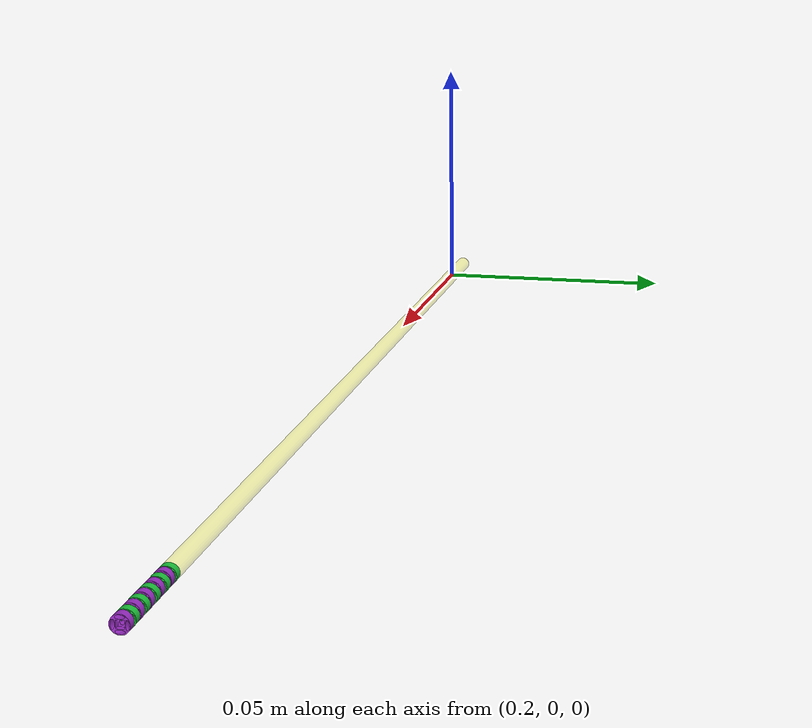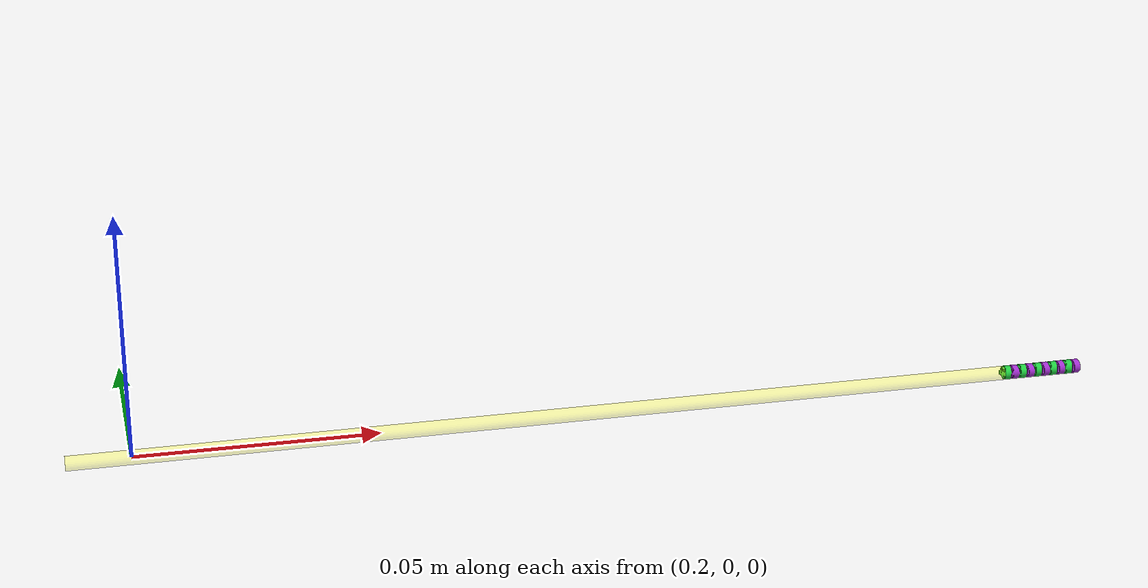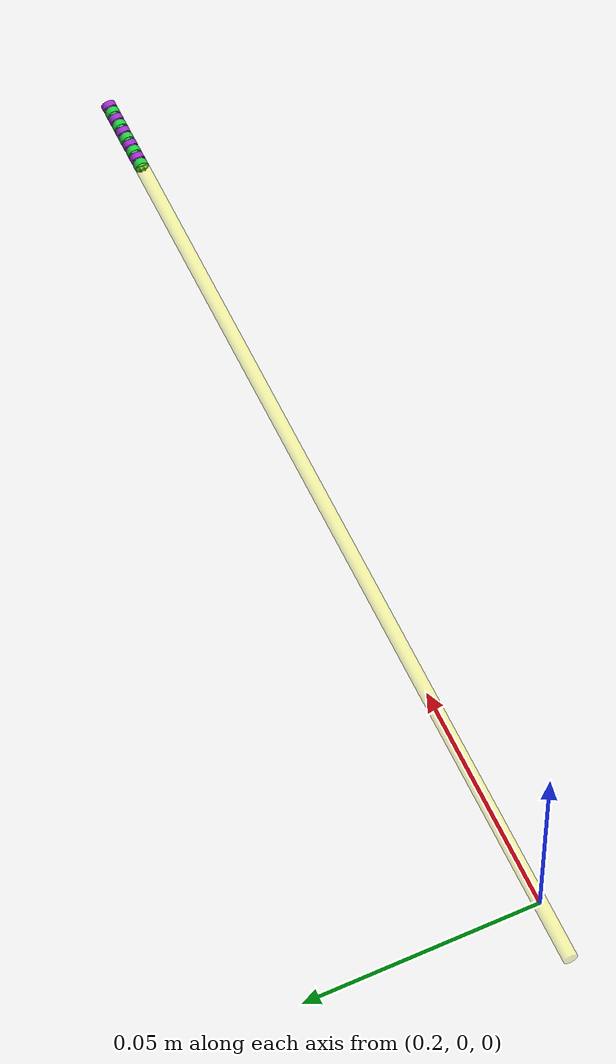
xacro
<?xml version="1.0"?>
<robot xmlns:xacro="https://www.ros.org/wiki/xacro" name="surgical_robot_control">

<xacro:property name="width" value="0.05"/>
<xacro:property name="height" value="0.2"/>
<xacro:property name="mass" value="0.1"/>

<!-- segment macro -->
<xacro:property name="seg_interval" value="0.0018"/>
<xacro:property name="tilt" value="0.0 1.0 0.0"/>
<xacro:property name="pan" value="0.0 0.0 1.0"/>

<xacro:property name="gray" value="1.0 1.0 1.0 0.4"/>
<xacro:property name="black" value="0.0 0.0 0.0 1.0"/>
<xacro:property name="orange" value="1.0 0.4 0.0 1.0"/>
<xacro:property name="blue" value="0 0 0.8 1"/>
<xacro:property name="blueviolet" value="0.54 0.16 0.88 1.0"/>

    <link name="base_surgical_robot">
        <inertial>
            <origin xyz="0.0 0.0 0.0" rpy="0.0 0.0 0.0"/>
        </inertial>
    </link>

    <joint name="base-shaft" type="fixed">
        <origin xyz="0.187 0.0 0.0" rpy="0.0 0.0 0.0"/>
        <parent link="base_surgical_robot"/>
        <child link="shaft"/>
    </joint>

    <link name="shaft">
        <inertial>
            <origin xyz="0.25 0.0 0.0" rpy="0.0 2.0 0.0"/>
            <mass value="${mass}"/>
            <inertia ixx="${mass/12*(width*width+width*width)}" ixy="0.0" ixz="0.0"
                iyy="${mass/12*(width*width+width*width)}" iyz="0.0"
                izz="${mass/12*(height*height+height*height)}"/>
        </inertial>
        <visual>
            <origin xyz="${height/2} 0.0 0.0" rpy="0.0 1.5708 0.0"/>
            <geometry>
                <cylinder radius="0.0015" length="${height}"/>
            </geometry>
            <material name="link3">
                <color rgba="1.0 1.0 0.0 0.3"/>
            </material>
        </visual>
        <collision>
            <origin xyz="${height/2} 0.0 0.0" rpy="0.0 0.0 0.0"/>
            <geometry>
                <cylinder radius="0.0015" length="${height}"/>
            </geometry>
        </collision>
    </link>

    <joint name="tilt-1" type="revolute">
        <origin xyz="${height} 0.0 0.0" rpy="0.0 0.0 0.0"/>
        <parent link="shaft"/>
        <child link="seg_tilt-1"/>
        <axis xyz="${tilt}"/>
        <limit lower="-0.7854" upper="0.7854" effort="30.0" velocity="3.141"/>
    </joint>

    <link name="seg_tilt-1">
        <visual>
            <origin xyz="0.0 0.0 0.0" rpy="0.0 0.0 0.0"/>
            <geometry>
                <mesh filename="package://surgical_robot_control/meshes/continuum_segment_Blender_zero_lightgreen.dae" scale="0.001 0.001 0.001"/>
            </geometry>
        </visual>
    </link>

    <joint name="pan-1" type="revolute">
        <origin xyz="${seg_interval} 0.0 0.0" rpy="0.0 0.0 0.0"/>
        <parent link="seg_tilt-1"/>
        <child link="seg_pan-1"/>
        <axis xyz="${pan}"/>
        <limit lower="-0.7854" upper="0.7854" effort="30.0" velocity="3.141"/>
    </joint>

    <link name="seg_pan-1">
        <visual>
            <origin xyz="0.0 0.0 0.0" rpy="1.5708 0.0 0.0"/>
            <geometry>
                <mesh filename="package://surgical_robot_control/meshes/continuum_segment_Blender_zero_violet.dae" scale="0.001 0.001 0.001"/>
            </geometry>
        </visual>
    </link>

    <joint name="tilt-2" type="revolute">
        <origin xyz="${seg_interval} 0.0 0.0" rpy="0.0 0.0 0.0"/>
        <parent link="seg_pan-1"/>
        <child link="seg_tilt-2"/>
        <axis xyz="${tilt}"/>
        <limit lower="-0.7854" upper="0.7854" effort="30.0" velocity="3.141"/>
    </joint>

    <link name="seg_tilt-2">
        <visual>
            <origin xyz="0.0 0.0 0.0" rpy="0.0 0.0 0.0"/>
            <geometry>
                <mesh filename="package://surgical_robot_control/meshes/continuum_segment_Blender_zero_lightgreen.dae" scale="0.001 0.001 0.001"/>
            </geometry>
        </visual>
    </link>

    <joint name="pan-2" type="revolute">
        <origin xyz="${seg_interval} 0.0 0.0" rpy="0.0 0.0 0.0"/>
        <parent link="seg_tilt-2"/>
        <child link="seg_pan-2"/>
        <axis xyz="${pan}"/>
        <limit lower="-0.7854" upper="0.7854" effort="30.0" velocity="3.141"/>
    </joint>

    <link name="seg_pan-2">
        <visual>
            <origin xyz="0.0 0.0 0.0" rpy="1.5708 0.0 0.0"/>
            <geometry>
                <mesh filename="package://surgical_robot_control/meshes/continuum_segment_Blender_zero_violet.dae" scale="0.001 0.001 0.001"/>
            </geometry>
        </visual>
    </link>

    <joint name="tilt-3" type="revolute">
        <origin xyz="${seg_interval} 0.0 0.0" rpy="0.0 0.0 0.0"/>
        <parent link="seg_pan-2"/>
        <child link="seg_tilt-3"/>
        <axis xyz="${tilt}"/>
        <limit lower="-0.7854" upper="0.7854" effort="30.0" velocity="3.141"/>
    </joint>

    <link name="seg_tilt-3">
        <visual>
            <origin xyz="0.0 0.0 0.0" rpy="0.0 0.0 0.0"/>
            <geometry>
                <mesh filename="package://surgical_robot_control/meshes/continuum_segment_Blender_zero_lightgreen.dae" scale="0.001 0.001 0.001"/>
            </geometry>
        </visual>
    </link>

    <joint name="pan-3" type="revolute">
        <origin xyz="${seg_interval} 0.0 0.0" rpy="0.0 0.0 0.0"/>
        <parent link="seg_tilt-3"/>
        <child link="seg_pan-3"/>
        <axis xyz="${pan}"/>
        <limit lower="-0.7854" upper="0.7854" effort="30.0" velocity="3.141"/>
    </joint>

    <link name="seg_pan-3">
        <visual>
            <origin xyz="0.0 0.0 0.0" rpy="1.5708 0.0 0.0"/>
            <geometry>
                <mesh filename="package://surgical_robot_control/meshes/continuum_segment_Blender_zero_violet.dae" scale="0.001 0.001 0.001"/>
            </geometry>
        </visual>
    </link>

    <joint name="tilt-4" type="revolute">
        <origin xyz="${seg_interval} 0.0 0.0" rpy="0.0 0.0 0.0"/>
        <parent link="seg_pan-3"/>
        <child link="seg_tilt-4"/>
        <axis xyz="${tilt}"/>
        <limit lower="-0.7854" upper="0.7854" effort="30.0" velocity="3.141"/>
    </joint>

    <link name="seg_tilt-4">
        <visual>
            <origin xyz="0.0 0.0 0.0" rpy="0.0 0.0 0.0"/>
            <geometry>
                <mesh filename="package://surgical_robot_control/meshes/continuum_segment_Blender_zero_lightgreen.dae" scale="0.001 0.001 0.001"/>
            </geometry>
        </visual>
    </link>

    <joint name="pan-4" type="revolute">
        <origin xyz="${seg_interval} 0.0 0.0" rpy="0.0 0.0 0.0"/>
        <parent link="seg_tilt-4"/>
        <child link="seg_pan-4"/>
        <axis xyz="${pan}"/>
        <limit lower="-0.7854" upper="0.7854" effort="30.0" velocity="3.141"/>
    </joint>

    <link name="seg_pan-4">
        <visual>
            <origin xyz="0.0 0.0 0.0" rpy="1.5708 0.0 0.0"/>
            <geometry>
                <mesh filename="package://surgical_robot_control/meshes/continuum_segment_Blender_zero_violet.dae" scale="0.001 0.001 0.001"/>
            </geometry>
        </visual>
    </link>

    <joint name="tilt-5" type="revolute">
        <origin xyz="${seg_interval} 0.0 0.0" rpy="0.0 0.0 0.0"/>
        <parent link="seg_pan-4"/>
        <child link="seg_tilt-5"/>
        <axis xyz="${tilt}"/>
        <limit lower="-0.7854" upper="0.7854" effort="30.0" velocity="3.141"/>
    </joint>

    <link name="seg_tilt-5">
        <visual>
            <origin xyz="0.0 0.0 0.0" rpy="0.0 0.0 0.0"/>
            <geometry>
                <mesh filename="package://surgical_robot_control/meshes/continuum_segment_Blender_zero_lightgreen.dae" scale="0.001 0.001 0.001"/>
            </geometry>
        </visual>
    </link>

    <joint name="pan-5" type="revolute">
        <origin xyz="${seg_interval} 0.0 0.0" rpy="0.0 0.0 0.0"/>
        <parent link="seg_tilt-5"/>
        <child link="seg_pan-5"/>
        <axis xyz="${pan}"/>
        <limit lower="-0.7854" upper="0.7854" effort="30.0" velocity="3.141"/>
    </joint>

    <link name="seg_pan-5">
        <visual>
            <origin xyz="0.0 0.0 0.0" rpy="1.5708 0.0 0.0"/>
            <geometry>
                <mesh filename="package://surgical_robot_control/meshes/continuum_segment_Blender_zero_violet.dae" scale="0.001 0.001 0.001"/>
            </geometry>
        </visual>
    </link>

</robot>
